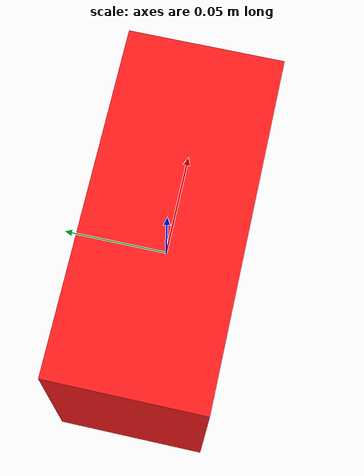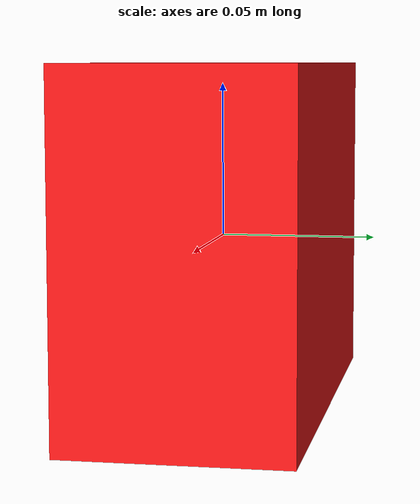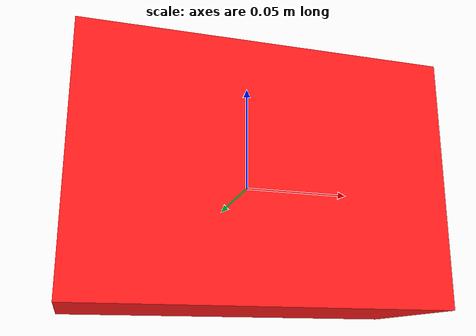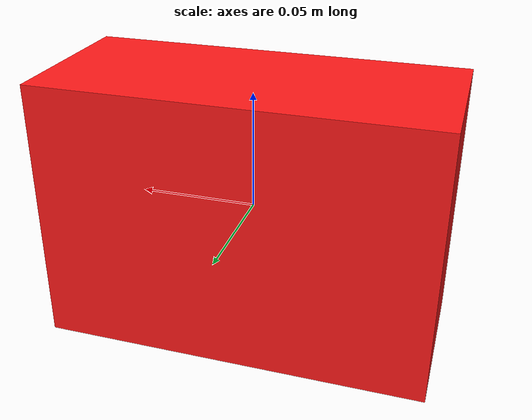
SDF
<?xml version="1.0"?>
<sdf version="1.4">
  <model name="003_cracker_box_textured">
    <pose>0 0 0  0 0 1.57</pose>
    <link name="body">
      <inertial>
        <mass> 1.0 </mass>
        <pose>0 0 0 0 0 0</pose>
        <inertia>
          <ixx>0.002431375930440449</ixx>
          <ixy>0.0</ixy>
          <ixz>0.0</ixz>
          <iyy>0.004092980997122475</iyy>
          <iyz>0.0</iyz>
          <izz>0.005828855552037074</izz>
        </inertia>
      </inertial>
      <visual name="visual">
        <geometry>
          <box>
            <size>0.07172171712267805 0.16384180899567624 0.11354082245590955</size>
          </box>
        </geometry>
        <material>
          <ambient>1 1 0 1</ambient>
          <diffuse>1 0.1 0.1 1</diffuse>
          <specular>0.1 0.1 0.1 1</specular>
          <emissive>0 0 0 0</emissive>
        </material>
        <pose>0 0 0 0 -0 0</pose>
        <transparency>0</transparency>
        <cast_shadows>1</cast_shadows>
      </visual>
      <collision name="collision">
        <geometry>
          <box>
            <size>0.07172171712267805 0.16384180899567624 0.11354082245590955</size>
          </box>
        </geometry>
        <max_contacts>10</max_contacts>
        <surface>
          <friction>
            <ode>
              <mu>0.8</mu>
              <mu2>0.8</mu2>
              <slip1>0</slip1>
              <slip2>0</slip2>
            </ode>
            <torsional>
              <ode/>
            </torsional>
          </friction>
          <contact>
            <ode>
              <kp>1000000.0</kp>
              <kd>1.0</kd>
              <max_vel>0.0</max_vel>
            </ode>
          </contact>
        </surface>
        <pose>0 0 0 0 0 0</pose>
      </collision>
    </link>
  </model>
</sdf>
